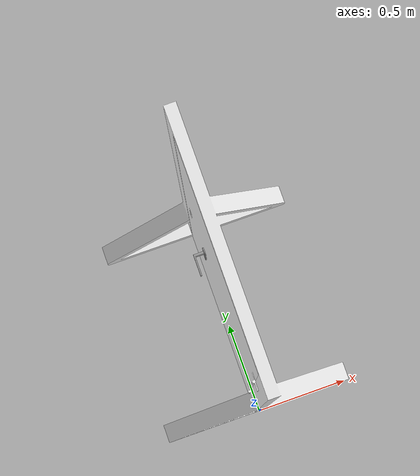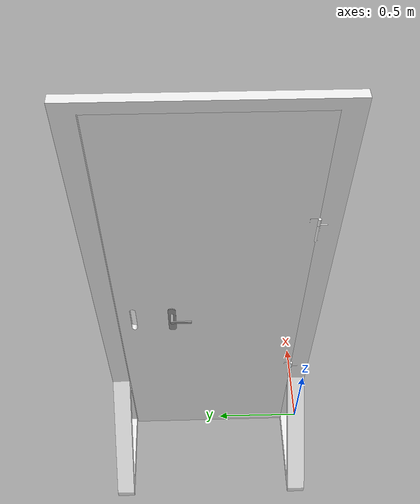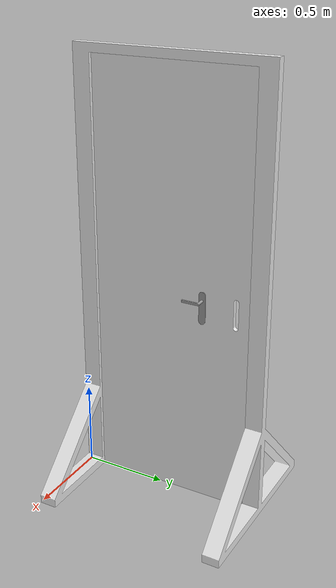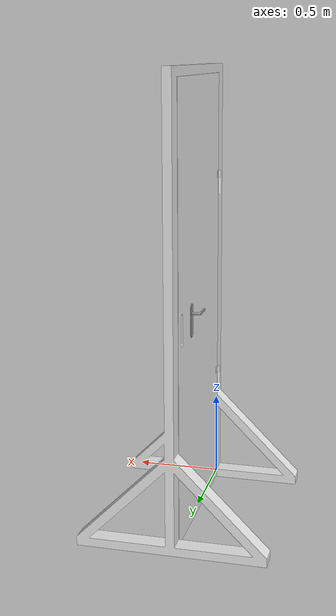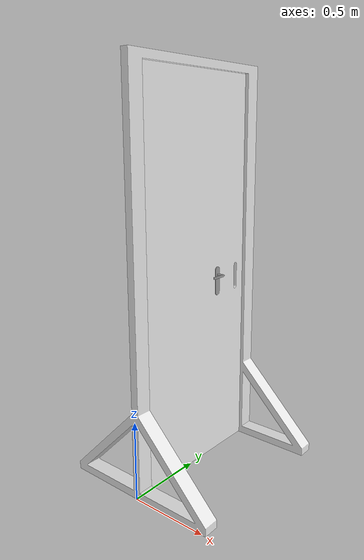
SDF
<sdf version='1.7'>
  <model name='door2'>
    <link name="outward">
      <virtual_volume name="outward_vv">
        <geometry>
          <box>
            <size>0.2 0.35 0.01</size>
          </box>
        </geometry>
        <pose>0.6 0.6 0.0 0 0 0</pose>
      </virtual_volume>
    </link>
    <link name="inward">
      <virtual_volume name="inward_vv">
        <geometry>
          <box>
            <size>0.2 0.35 0.01</size>
          </box>
        </geometry>
        <pose>-0.6 0.6 0.0 0 0 0</pose>
      </virtual_volume>
    </link>
    <link name='door_frame'>
      <inertial>
        <pose>-3.2e-05 0.57447 0.83303 0 -0 0</pose>
        <mass>51.073</mass>
        <inertia>
          <ixx>50.017</ixx>
          <ixy>-0.00079296</ixy>
          <ixz>0.00067786</ixz>
          <iyy>38.461</iyy>
          <iyz>0.01138</iyz>
          <izz>15.722</izz>
        </inertia>
      </inertial>
      <collision name='door_frame_collision'>
        <pose>0 0 0 0 -0 0</pose>
        <geometry>
          <mesh>
            <scale>1 1 1</scale>
            <uri>model://door2/meshes/door_frame.STL</uri>
          </mesh>
        </geometry>
      </collision>
      <visual name='door_frame_visual'>
        <pose>0 0 0 0 -0 0</pose>
        <geometry>
          <mesh>
            <scale>1 1 1</scale>
            <uri>model://door2/meshes/door_frame.STL</uri>
          </mesh>
        </geometry>
        <material>
          <script>
            <uri>model://door2/scripts</uri>
            <uri>model://door2/textures</uri>
            <name>Door/WhiteWood</name>
          </script>
        </material>
      </visual>
    </link>
    <joint name='rot_plate' type='revolute'>
      <pose relative_to='door_frame'>-0.032 0.1 1.94 -9.3e-05 -1.57079 3.14159</pose>
      <parent>door_frame</parent>
      <child>door_plate</child>
      <axis>
        <xyz>1 0 0</xyz>
        <limit>
          <lower>-0.1</lower>
          <upper>1.57</upper>
          <effort>0</effort>
          <velocity>0</velocity>
        </limit>
        <dynamics>
          <damping>0.1</damping>
          <friction>1</friction>
          <spring_reference>0</spring_reference>
          <spring_stiffness>0</spring_stiffness>
        </dynamics>
      </axis>
    </joint>
    <link name='door_plate'>
      <pose relative_to='rot_plate'>0 0 0 0 -0 0</pose>
      <inertial>
        <pose>-0.688441 -0.483512 0.021993 0 -0 0</pose>
        <mass>7.26871</mass>
        <inertia>
          <ixx>0.557484</ixx>
          <ixy>-0.00198187</ixy>
          <ixz>3.00585e-05</ixz>
          <iyy>3.64988</iyy>
          <iyz>0.000243064</iyz>
          <izz>4.20619</izz>
        </inertia>
      </inertial>
      <collision name='door_plate_collision'>
        <pose>0 0 0 0 -0 0</pose>
        <geometry>
          <mesh>
            <scale>1 1 1</scale>
            <uri>model://door2/meshes/door_plate.STL</uri>
          </mesh>
        </geometry>
      </collision>
      <collision name='door_plate_fixed_joint_lump__door_locker_collision_1'>
        <pose>-0.69495 -0.665 0.042 3.1415 -1.5708 0</pose>
        <geometry>
          <mesh>
            <scale>1 1 1</scale>
            <uri>model://door2/meshes/door_locker.STL</uri>
          </mesh>
        </geometry>
      </collision>
      <visual name='door_plate_visual'>
        <pose>0 0 0 0 -0 0</pose>
        <geometry>
          <mesh>
            <scale>1 1 1</scale>
            <uri>model://door2/meshes/door_plate.STL</uri>
          </mesh>
        </geometry>
        <material>
          <script>
            <uri>model://door2/scripts</uri>
            <uri>model://door2/textures</uri>
            <name>Door/WhiteWood</name>
          </script>
        </material>
      </visual>
      <visual name='door_plate_fixed_joint_lump__door_locker_visual_1'>
        <pose>-0.69495 -0.665 0.042 3.1415 -1.5708 0</pose>
        <geometry>
          <mesh>
            <scale>1 1 1</scale>
            <uri>model://door2/meshes/door_locker.STL</uri>
          </mesh>
        </geometry>
        <material>
          <script>
            <uri>model://door2/scripts</uri>
            <uri>model://door2/textures</uri>
            <name>Handle/GrayMetal</name>
          </script>
        </material>
      </visual>
    </link>
    <joint name='rot_handle' type='revolute'>
      <pose relative_to='door_plate'>-0.69495 -0.665 0.042 3.14141 -1.57079 -3.14159</pose>
      <parent>door_plate</parent>
      <child>door_handle</child>
      <axis>
        <xyz>1 0 0</xyz>
        <limit>
          <lower>-0.1</lower>
          <upper>1.57</upper>
          <effort>0</effort>
          <velocity>0</velocity>
        </limit>
        <dynamics>
          <damping>0.1</damping>
          <friction>1</friction>
          <spring_reference>0</spring_reference>
          <spring_stiffness>0</spring_stiffness>
        </dynamics>
      </axis>
    </joint>
    <link name='door_handle'>
      <virtual_volume name="handle_vv">
        <geometry>
          <box>
            <size>0.2 0.12 0.12</size>
          </box>
        </geometry>
        <pose>0 0.965 1.0 0 0 0</pose>
      </virtual_volume>
      <pose relative_to='rot_handle'>0 0 0 0 -0 0</pose>
      <inertial>
        <pose>-0.02 0.023356 -0 0 -0 0</pose>
        <mass>0.046826</mass>
        <inertia>
          <ixx>4.8725e-05</ixx>
          <ixy>3.3286e-19</ixy>
          <ixz>4.449e-19</ixz>
          <iyy>0.0001374</iyy>
          <iyz>1.7087e-19</iyz>
          <izz>0.00018447</izz>
        </inertia>
      </inertial>
      <collision name='door_handle_collision'>
        <pose>0 0 0 0 -0 0</pose>
        <geometry>
          <mesh>
            <scale>1 1 1</scale>
            <uri>model://door2/meshes/door_handle.STL</uri>
          </mesh>
        </geometry>
      </collision>
      <visual name='door_handle_visual'>
        <pose>0 0 0 0 -0 0</pose>
        <geometry>
          <mesh>
            <scale>1 1 1</scale>
            <uri>model://door2/meshes/door_handle.STL</uri>
          </mesh>
        </geometry>
        <material>
          <script>
            <uri>model://door2/scripts</uri>
            <uri>model://door2/textures</uri>
            <name>Handle/GrayMetal</name>
          </script>
        </material>
      </visual>
    </link>
  </model>
</sdf>
